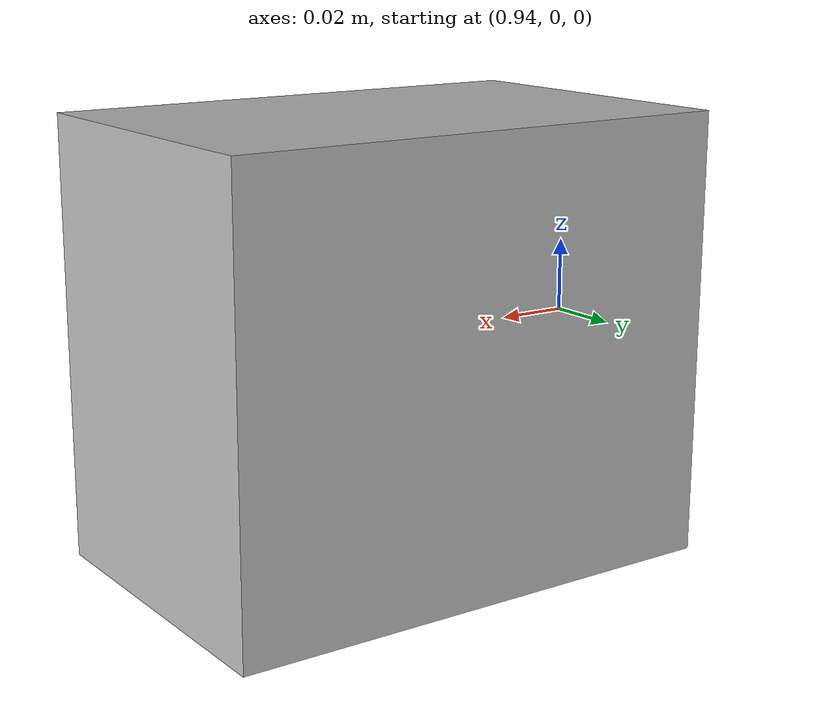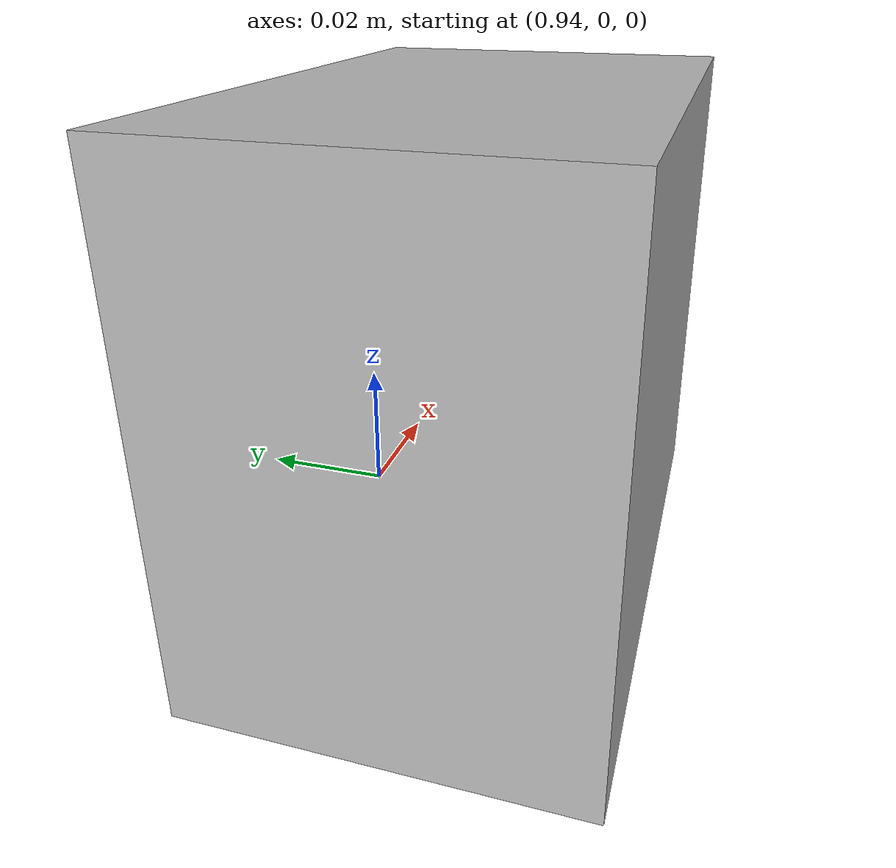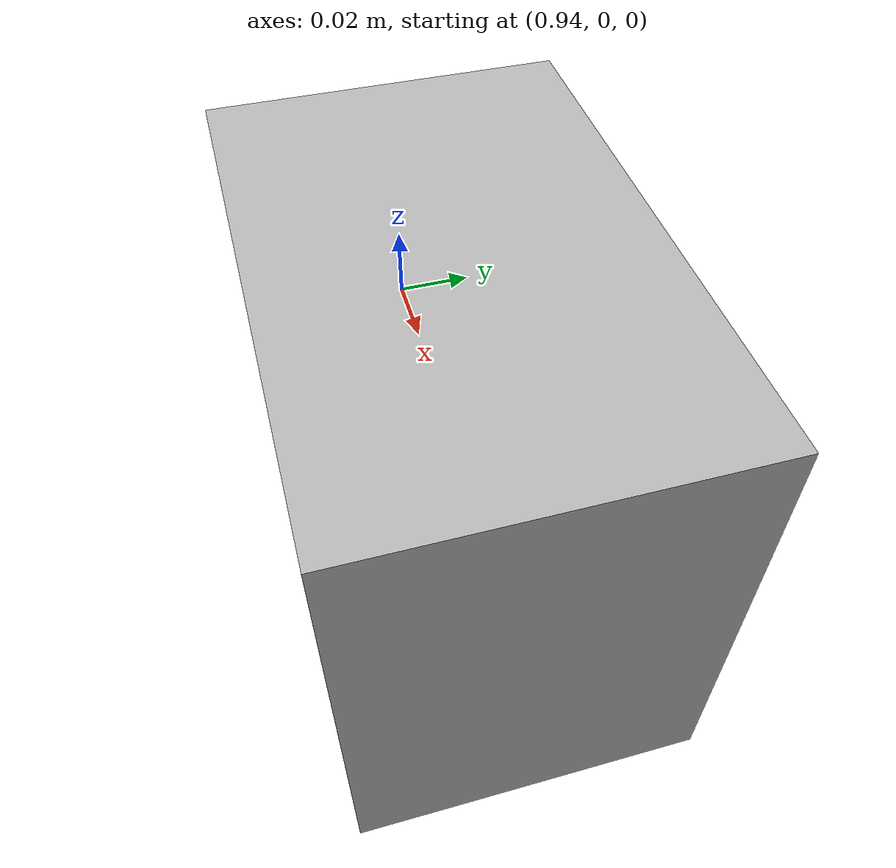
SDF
<?xml version="1.0" ?>
<sdf version="1.4">
  <model name="mpnet_box1">
    <pose frame="world">1 0 0.0 0 0 0</pose>
    <static>true</static>
    <link name="link">
      <inertial>
        <mass>0.1</mass>
      </inertial>
      <visual name="visual">
        <geometry>
          <box>
            <size>0.14 0.09 0.12</size>
          </box>
        </geometry>
      </visual>
    </link>
  </model>
</sdf>
